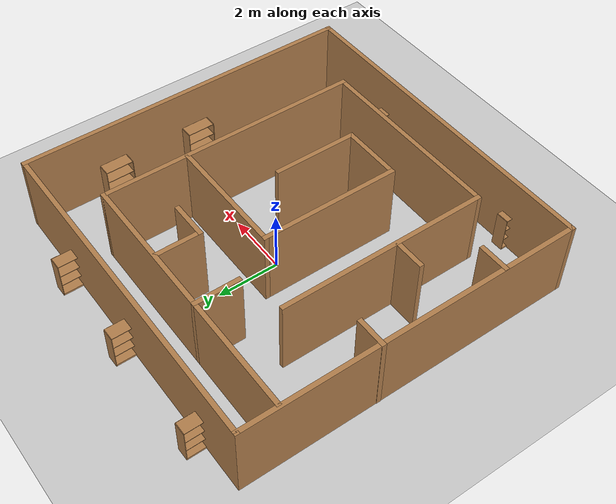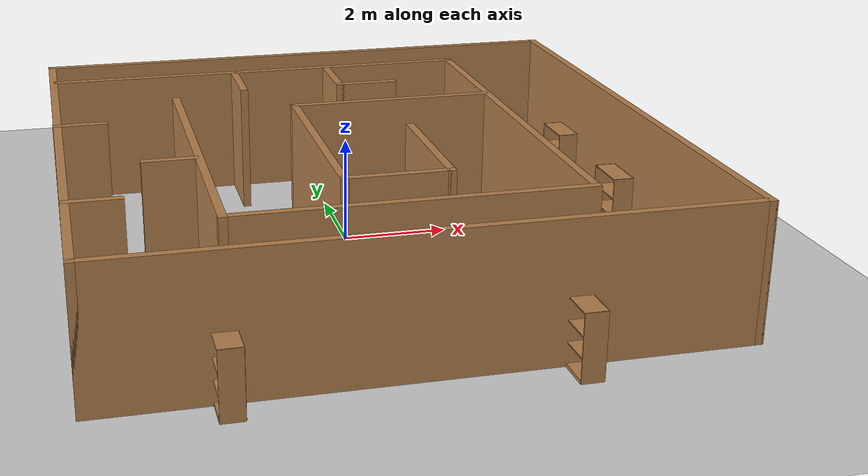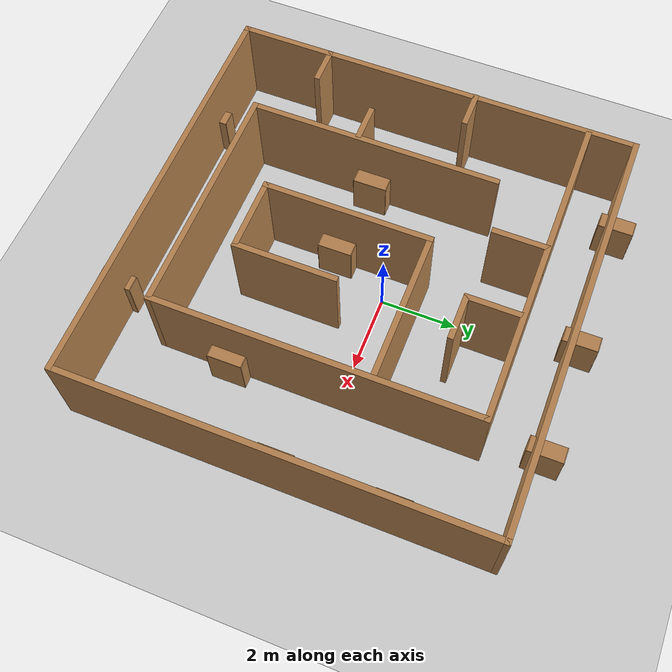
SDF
<sdf version="1.6">
 <world name="default">
  <light name="sun" type="directional">
   <pose>0 0 10 0 -0 0</pose>
   <diffuse>0.8 0.8 0.8 1</diffuse>
   <specular>0.2 0.2 0.2 1</specular>
   <attenuation>
    <range>1000</range>
    <constant>0.9</constant>
    <linear>0.01</linear>
    <quadratic>0.001</quadratic>
   </attenuation>
   <direction>-0.5 0.1 -0.9</direction>
  </light>
  <model name="ground_plane">
   <static>1</static>
   <link name="link">
    <collision name="collision">
     <geometry><plane><normal>0 0 1</normal><size>100 100</size></plane></geometry>
     <surface><friction><ode><mu>100</mu><mu2>50</mu2></ode></friction></surface>
    </collision>
    <visual name="visual">
     <cast_shadows>0</cast_shadows>
     <geometry><plane><normal>0 0 1</normal><size>100 100</size></plane></geometry>
     <material>
      <script><uri>file://media/materials/scripts/gazebo.material</uri><name>Gazebo/Grey</name></script>
     </material>
    </visual>
   </link>
  </model>
  <gravity>0 0 -9.8</gravity>
  <magnetic_field>6e-06 2.3e-05 -4.2e-05</magnetic_field>
  <atmosphere type="adiabatic"/>
  <physics name="default_physics" default="0" type="ode">
   <max_step_size>0.001</max_step_size>
   <real_time_factor>1</real_time_factor>
   <real_time_update_rate>1000</real_time_update_rate>
  </physics>
  <scene><ambient>0.4 0.4 0.4 1</ambient><background>0.7 0.7 0.7 1</background><shadows>1</shadows></scene>
  <spherical_coordinates>
   <surface_model>EARTH_WGS84</surface_model>
   <latitude_deg>0</latitude_deg>
   <longitude_deg>0</longitude_deg>
   <elevation>0</elevation>
   <heading_deg>0</heading_deg>
  </spherical_coordinates>
  <model name="Indoor_10m_1">
   <pose>0.099491 -0.566 0 0 -0 0</pose>
   <link name="Wall_10">
    <collision name="Wall_10_Collision">
     <geometry><box><size>6.25 0.15 2.5</size></box></geometry>
     <pose>0 0 1.25 0 -0 0</pose>
    </collision>
    <visual name="Wall_10_Visual">
     <pose>0 0 1.25 0 -0 0</pose>
     <geometry><box><size>6.25 0.15 2.5</size></box></geometry>
     <material>
      <script><uri>file://media/materials/scripts/gazebo.material</uri><name>Gazebo/Wood</name></script>
      <ambient>1 1 1 1</ambient>
     </material>
     <meta><layer>0</layer></meta>
    </visual>
    <pose>-0.04 -4.155 0 0 -0 3.14159</pose>
   </link>
   <link name="Wall_11">
    <collision name="Wall_11_Collision">
     <geometry><box><size>6.75 0.15 2.5</size></box></geometry>
     <pose>0 0 1.25 0 -0 0</pose>
    </collision>
    <visual name="Wall_11_Visual">
     <pose>0 0 1.25 0 -0 0</pose>
     <geometry><box><size>6.75 0.15 2.5</size></box></geometry>
     <material>
      <script><uri>file://media/materials/scripts/gazebo.material</uri><name>Gazebo/Wood</name></script>
      <ambient>1 1 1 1</ambient>
     </material>
     <meta><layer>0</layer></meta>
    </visual>
    <pose>-3.09 -0.855 0 0 -0 1.5708</pose>
   </link>
   <link name="Wall_13">
    <collision name="Wall_13_Collision">
     <geometry><box><size>4 0.15 2.5</size></box></geometry>
     <pose>0 0 1.25 0 -0 0</pose>
    </collision>
    <visual name="Wall_13_Visual">
     <pose>0 0 1.25 0 -0 0</pose>
     <geometry><box><size>4 0.15 2.5</size></box></geometry>
     <material>
      <script><uri>file://media/materials/scripts/gazebo.material</uri><name>Gazebo/Wood</name></script>
      <ambient>1 1 1 1</ambient>
     </material>
     <meta><layer>0</layer></meta>
    </visual>
    <pose>1.025 1.475 0 0 -0 3.14159</pose>
   </link>
   <link name="Wall_14">
    <collision name="Wall_14_Collision">
     <geometry><box><size>4.5 0.15 2.5</size></box></geometry>
     <pose>0 0 1.25 0 -0 0</pose>
    </collision>
    <visual name="Wall_14_Visual">
     <pose>0 0 1.25 0 -0 0</pose>
     <geometry><box><size>4.5 0.15 2.5</size></box></geometry>
     <material>
      <script><uri>file://media/materials/scripts/gazebo.material</uri><name>Gazebo/Wood</name></script>
      <ambient>1 1 1 1</ambient>
     </material>
     <meta><layer>0</layer></meta>
    </visual>
    <pose>-0.9 -0.7 0 0 -0 -1.5708</pose>
   </link>
   <link name="Wall_15">
    <collision name="Wall_15_Collision">
     <geometry><box><size>2 0.15 2.5</size></box></geometry>
     <pose>0 0 1.25 0 -0 0</pose>
    </collision>
    <visual name="Wall_15_Visual">
     <pose>0 0 1.25 0 -0 0</pose>
     <geometry><box><size>2 0.15 2.5</size></box></geometry>
     <material>
      <script><uri>file://media/materials/scripts/gazebo.material</uri><name>Gazebo/Wood</name></script>
      <ambient>1 1 1 1</ambient>
     </material>
     <meta><layer>0</layer></meta>
    </visual>
    <pose>0.025 -2.875 0 0 -0 0</pose>
   </link>
   <link name="Wall_16">
    <collision name="Wall_16_Collision">
     <geometry><box><size>2.75 0.15 2.5</size></box></geometry>
     <pose>0 0 1.25 0 -0 0</pose>
    </collision>
    <visual name="Wall_16_Visual">
     <pose>0 0 1.25 0 -0 0</pose>
     <geometry><box><size>2.75 0.15 2.5</size></box></geometry>
     <material>
      <script><uri>file://media/materials/scripts/gazebo.material</uri><name>Gazebo/Wood</name></script>
      <ambient>1 1 1 1</ambient>
     </material>
     <meta><layer>0</layer></meta>
    </visual>
    <pose>0.949999 -1.575 0 0 -0 1.5708</pose>
   </link>
   <link name="Wall_18">
    <collision name="Wall_18_Collision">
     <geometry><box><size>1.5 0.15 2.5</size></box></geometry>
     <pose>0 0 1.25 0 -0 0</pose>
    </collision>
    <visual name="Wall_18_Visual">
     <pose>0 0 1.25 0 -0 0</pose>
     <geometry><box><size>1.5 0.15 2.5</size></box></geometry>
     <material>
      <script><uri>file://media/materials/scripts/gazebo.material</uri><name>Gazebo/Wood</name></script>
      <ambient>1 1 1 1</ambient>
     </material>
     <meta><layer>0</layer></meta>
    </visual>
    <pose>0.28 3.46 0 0 -0 -1.5708</pose>
   </link>
   <link name="Wall_19">
    <collision name="Wall_19_Collision">
     <geometry><box><size>1.25 0.15 2.5</size></box></geometry>
     <pose>0 0 1.25 0 -0 0</pose>
    </collision>
    <visual name="Wall_19_Visual">
     <pose>0 0 1.25 0 -0 0</pose>
     <geometry><box><size>1.25 0.15 2.5</size></box></geometry>
     <material>
      <script><uri>file://media/materials/scripts/gazebo.material</uri><name>Gazebo/Wood</name></script>
      <ambient>1 1 1 1</ambient>
     </material>
     <meta><layer>0</layer></meta>
    </visual>
    <pose>0.829999 2.785 0 0 -0 0</pose>
   </link>
   <link name="Wall_2">
    <collision name="Wall_2_Collision">
     <geometry><box><size>11 0.15 2.5</size></box></geometry>
     <pose>0 0 1.25 0 -0 0</pose>
    </collision>
    <visual name="Wall_2_Visual">
     <pose>0 0 1.25 0 -0 0</pose>
     <geometry><box><size>11 0.15 2.5</size></box></geometry>
     <material>
      <script><uri>file://media/materials/scripts/gazebo.material</uri><name>Gazebo/Wood</name></script>
      <ambient>1 1 1 1</ambient>
     </material>
     <meta><layer>0</layer></meta>
    </visual>
    <pose>-5.42 -0 0 0 -0 1.5708</pose>
   </link>
   <link name="Wall_21">
    <collision name="Wall_21_Collision">
     <geometry><box><size>1 0.15 2.5</size></box></geometry>
     <pose>0 0 1.25 0 -0 0</pose>
    </collision>
    <visual name="Wall_21_Visual">
     <pose>0 0 1.25 0 -0 0</pose>
     <geometry><box><size>1 0.15 2.5</size></box></geometry>
     <material>
      <script><uri>file://media/materials/scripts/gazebo.material</uri><name>Gazebo/Wood</name></script>
      <ambient>1 1 1 1</ambient>
     </material>
     <meta><layer>0</layer></meta>
    </visual>
    <pose>-4.985 -2.995 0 0 -0 0</pose>
   </link>
   <link name="Wall_23">
    <collision name="Wall_23_Collision">
     <geometry><box><size>1 0.15 2.5</size></box></geometry>
     <pose>0 0 1.25 0 -0 0</pose>
    </collision>
    <visual name="Wall_23_Visual">
     <pose>0 0 1.25 0 -0 0</pose>
     <geometry><box><size>1 0.15 2.5</size></box></geometry>
     <material>
      <script><uri>file://media/materials/scripts/gazebo.material</uri><name>Gazebo/Wood</name></script>
      <ambient>1 1 1 1</ambient>
     </material>
     <meta><layer>0</layer></meta>
    </visual>
    <pose>-3.595 -1.275 0 0 -0 3.14159</pose>
   </link>
   <link name="Wall_25">
    <collision name="Wall_25_Collision">
     <geometry><box><size>1 0.15 2.5</size></box></geometry>
     <pose>0 0 1.25 0 -0 0</pose>
    </collision>
    <visual name="Wall_25_Visual">
     <pose>0 0 1.25 0 -0 0</pose>
     <geometry><box><size>1 0.15 2.5</size></box></geometry>
     <material>
      <script><uri>file://media/materials/scripts/gazebo.material</uri><name>Gazebo/Wood</name></script>
      <ambient>1 1 1 1</ambient>
     </material>
     <meta><layer>0</layer></meta>
    </visual>
    <pose>-5.005 1.125 0 0 -0 0</pose>
   </link>
   <link name="Wall_27">
    <collision name="Wall_27_Collision">
     <geometry><box><size>1.5 0.15 2.5</size></box></geometry>
     <pose>0 0 1.25 0 -0 0</pose>
    </collision>
    <visual name="Wall_27_Visual">
     <pose>0 0 1.25 0 -0 0</pose>
     <geometry><box><size>1.5 0.15 2.5</size></box></geometry>
     <material>
      <script><uri>file://media/materials/scripts/gazebo.material</uri><name>Gazebo/Wood</name></script>
      <ambient>1 1 1 1</ambient>
     </material>
     <meta><layer>0</layer></meta>
    </visual>
    <pose>-1.69 3.52 0 0 -0 -1.5708</pose>
   </link>
   <link name="Wall_4">
    <collision name="Wall_4_Collision">
     <geometry><box><size>11 0.15 2.5</size></box></geometry>
     <pose>0 0 1.25 0 -0 0</pose>
    </collision>
    <visual name="Wall_4_Visual">
     <pose>0 0 1.25 0 -0 0</pose>
     <geometry><box><size>11 0.15 2.5</size></box></geometry>
     <material>
      <script><uri>file://media/materials/scripts/gazebo.material</uri><name>Gazebo/Wood</name></script>
      <ambient>1 1 1 1</ambient>
     </material>
     <meta><layer>0</layer></meta>
    </visual>
    <pose>0.005 -5.425 0 0 -0 0</pose>
   </link>
   <link name="Wall_5">
    <collision name="Wall_5_Collision">
     <geometry><box><size>11 0.15 2.5</size></box></geometry>
     <pose>0 0 1.25 0 -0 0</pose>
    </collision>
    <visual name="Wall_5_Visual">
     <pose>0 0 1.25 0 -0 0</pose>
     <geometry><box><size>11 0.15 2.5</size></box></geometry>
     <material>
      <script><uri>file://media/materials/scripts/gazebo.material</uri><name>Gazebo/Wood</name></script>
      <ambient>1 1 1 1</ambient>
     </material>
     <meta><layer>0</layer></meta>
    </visual>
    <pose>5.43 -0 0 0 -0 1.5708</pose>
   </link>
   <link name="Wall_6">
    <collision name="Wall_6_Collision">
     <geometry><box><size>11 0.15 2.5</size></box></geometry>
     <pose>0 0 1.25 0 -0 0</pose>
    </collision>
    <visual name="Wall_6_Visual">
     <pose>0 0 1.25 0 -0 0</pose>
     <geometry><box><size>11 0.15 2.5</size></box></geometry>
     <material>
      <script><uri>file://media/materials/scripts/gazebo.material</uri><name>Gazebo/Wood</name></script>
      <ambient>1 1 1 1</ambient>
     </material>
     <meta><layer>0</layer></meta>
    </visual>
    <pose>0.005 5.425 0 0 -0 3.14159</pose>
   </link>
   <link name="Wall_8">
    <collision name="Wall_8_Collision">
     <geometry><box><size>8.5 0.15 2.5</size></box></geometry>
     <pose>0 0 1.25 0 -0 0</pose>
    </collision>
    <visual name="Wall_8_Visual">
     <pose>0 0 1.25 0 -0 0</pose>
     <geometry><box><size>8.5 0.15 2.5</size></box></geometry>
     <material>
      <script><uri>file://media/materials/scripts/gazebo.material</uri><name>Gazebo/Wood</name></script>
      <ambient>1 1 1 1</ambient>
     </material>
     <meta><layer>0</layer></meta>
    </visual>
    <pose>-1.165 4.195 0 0 -0 0</pose>
   </link>
   <link name="Wall_9">
    <collision name="Wall_9_Collision">
     <geometry><box><size>8.5 0.15 2.5</size></box></geometry>
     <pose>0 0 1.25 0 -0 0</pose>
    </collision>
    <visual name="Wall_9_Visual">
     <pose>0 0 1.25 0 -0 0</pose>
     <geometry><box><size>8.5 0.15 2.5</size></box></geometry>
     <material>
      <script><uri>file://media/materials/scripts/gazebo.material</uri><name>Gazebo/Wood</name></script>
      <ambient>1 1 1 1</ambient>
     </material>
     <meta><layer>0</layer></meta>
    </visual>
    <pose>3.01 0.02 0 0 -0 -1.5708</pose>
   </link>
   <static>1</static>
  </model>
  <model name="bookshelf">
   <static>1</static>
   <link name="link">
    <inertial><mass>1</mass></inertial>
    <collision name="back">
     <pose>0 0.005 0.6 0 -0 0</pose>
     <geometry><box><size>0.9 0.01 1.2</size></box></geometry>
    </collision>
    <visual name="visual1">
     <pose>0 0.005 0.6 0 -0 0</pose>
     <geometry><box><size>0.9 0.01 1.2</size></box></geometry>
     <material>
      <script><uri>file://media/materials/scripts/gazebo.material</uri><name>Gazebo/Wood</name></script>
     </material>
    </visual>
    <collision name="left_side">
     <pose>0.45 -0.195 0.6 0 -0 0</pose>
     <geometry><box><size>0.02 0.4 1.2</size></box></geometry>
    </collision>
    <visual name="visual2">
     <pose>0.45 -0.195 0.6 0 -0 0</pose>
     <geometry><box><size>0.02 0.4 1.2</size></box></geometry>
     <material>
      <script><uri>file://media/materials/scripts/gazebo.material</uri><name>Gazebo/Wood</name></script>
     </material>
    </visual>
    <collision name="right_side">
     <pose>-0.45 -0.195 0.6 0 -0 0</pose>
     <geometry><box><size>0.02 0.4 1.2</size></box></geometry>
    </collision>
    <visual name="visual3">
     <pose>-0.45 -0.195 0.6 0 -0 0</pose>
     <geometry><box><size>0.02 0.4 1.2</size></box></geometry>
     <material>
      <script><uri>file://media/materials/scripts/gazebo.material</uri><name>Gazebo/Wood</name></script>
     </material>
    </visual>
    <collision name="bottom">
     <pose>0 -0.195 0.03 0 -0 0</pose>
     <geometry><box><size>0.88 0.4 0.06</size></box></geometry>
    </collision>
    <visual name="visual4">
     <pose>0 -0.195 0.03 0 -0 0</pose>
     <geometry><box><size>0.88 0.4 0.06</size></box></geometry>
     <material>
      <script><uri>file://media/materials/scripts/gazebo.material</uri><name>Gazebo/Wood</name></script>
     </material>
    </visual>
    <collision name="top">
     <pose>0 -0.195 1.19 0 -0 0</pose>
     <geometry><box><size>0.88 0.4 0.02</size></box></geometry>
    </collision>
    <visual name="visual5">
     <pose>0 -0.195 1.19 0 -0 0</pose>
     <geometry><box><size>0.88 0.4 0.02</size></box></geometry>
     <material>
      <script><uri>file://media/materials/scripts/gazebo.material</uri><name>Gazebo/Wood</name></script>
     </material>
    </visual>
    <collision name="low_shelf">
     <pose>0 -0.195 0.43 0 -0 0</pose>
     <geometry><box><size>0.88 0.4 0.02</size></box></geometry>
    </collision>
    <visual name="visual6">
     <pose>0 -0.195 0.43 0 -0 0</pose>
     <geometry><box><size>0.88 0.4 0.02</size></box></geometry>
     <material>
      <script><uri>file://media/materials/scripts/gazebo.material</uri><name>Gazebo/Wood</name></script>
     </material>
    </visual>
    <collision name="high_shelf">
     <pose>0 -0.195 0.8 0 -0 0</pose>
     <geometry><box><size>0.88 0.4 0.02</size></box></geometry>
    </collision>
    <visual name="visual7">
     <pose>0 -0.195 0.8 0 -0 0</pose>
     <geometry><box><size>0.88 0.4 0.02</size></box></geometry>
     <material>
      <script><uri>file://media/materials/scripts/gazebo.material</uri><name>Gazebo/Wood</name></script>
     </material>
    </visual>
   </link>
   <pose>5.44203 2.20417 0 0 0 -1.5635</pose>
  </model>
  <model name="bookshelf_clone">
   <static>1</static>
   <link name="link">
    <inertial><mass>1</mass></inertial>
    <collision name="back">
     <pose>0 0.005 0.6 0 -0 0</pose>
     <geometry><box><size>0.9 0.01 1.2</size></box></geometry>
    </collision>
    <visual name="visual1">
     <pose>0 0.005 0.6 0 -0 0</pose>
     <geometry><box><size>0.9 0.01 1.2</size></box></geometry>
     <material>
      <script><uri>file://media/materials/scripts/gazebo.material</uri><name>Gazebo/Wood</name></script>
     </material>
    </visual>
    <collision name="left_side">
     <pose>0.45 -0.195 0.6 0 -0 0</pose>
     <geometry><box><size>0.02 0.4 1.2</size></box></geometry>
    </collision>
    <visual name="visual2">
     <pose>0.45 -0.195 0.6 0 -0 0</pose>
     <geometry><box><size>0.02 0.4 1.2</size></box></geometry>
     <material>
      <script><uri>file://media/materials/scripts/gazebo.material</uri><name>Gazebo/Wood</name></script>
     </material>
    </visual>
    <collision name="right_side">
     <pose>-0.45 -0.195 0.6 0 -0 0</pose>
     <geometry><box><size>0.02 0.4 1.2</size></box></geometry>
    </collision>
    <visual name="visual3">
     <pose>-0.45 -0.195 0.6 0 -0 0</pose>
     <geometry><box><size>0.02 0.4 1.2</size></box></geometry>
     <material>
      <script><uri>file://media/materials/scripts/gazebo.material</uri><name>Gazebo/Wood</name></script>
     </material>
    </visual>
    <collision name="bottom">
     <pose>0 -0.195 0.03 0 -0 0</pose>
     <geometry><box><size>0.88 0.4 0.06</size></box></geometry>
    </collision>
    <visual name="visual4">
     <pose>0 -0.195 0.03 0 -0 0</pose>
     <geometry><box><size>0.88 0.4 0.06</size></box></geometry>
     <material>
      <script><uri>file://media/materials/scripts/gazebo.material</uri><name>Gazebo/Wood</name></script>
     </material>
    </visual>
    <collision name="top">
     <pose>0 -0.195 1.19 0 -0 0</pose>
     <geometry><box><size>0.88 0.4 0.02</size></box></geometry>
    </collision>
    <visual name="visual5">
     <pose>0 -0.195 1.19 0 -0 0</pose>
     <geometry><box><size>0.88 0.4 0.02</size></box></geometry>
     <material>
      <script><uri>file://media/materials/scripts/gazebo.material</uri><name>Gazebo/Wood</name></script>
     </material>
    </visual>
    <collision name="low_shelf">
     <pose>0 -0.195 0.43 0 -0 0</pose>
     <geometry><box><size>0.88 0.4 0.02</size></box></geometry>
    </collision>
    <visual name="visual6">
     <pose>0 -0.195 0.43 0 -0 0</pose>
     <geometry><box><size>0.88 0.4 0.02</size></box></geometry>
     <material>
      <script><uri>file://media/materials/scripts/gazebo.material</uri><name>Gazebo/Wood</name></script>
     </material>
    </visual>
    <collision name="high_shelf">
     <pose>0 -0.195 0.8 0 -0 0</pose>
     <geometry><box><size>0.88 0.4 0.02</size></box></geometry>
    </collision>
    <visual name="visual7">
     <pose>0 -0.195 0.8 0 -0 0</pose>
     <geometry><box><size>0.88 0.4 0.02</size></box></geometry>
     <material>
      <script><uri>file://media/materials/scripts/gazebo.material</uri><name>Gazebo/Wood</name></script>
     </material>
    </visual>
   </link>
   <pose>-0.366445 -1.45647 0 0 0 -1.5635</pose>
  </model>
  <model name="bookshelf_clone_0">
   <static>1</static>
   <link name="link">
    <inertial><mass>1</mass></inertial>
    <collision name="back">
     <pose>0 0.005 0.6 0 -0 0</pose>
     <geometry><box><size>0.9 0.01 1.2</size></box></geometry>
    </collision>
    <visual name="visual1">
     <pose>0 0.005 0.6 0 -0 0</pose>
     <geometry><box><size>0.9 0.01 1.2</size></box></geometry>
     <material>
      <script><uri>file://media/materials/scripts/gazebo.material</uri><name>Gazebo/Wood</name></script>
     </material>
    </visual>
    <collision name="left_side">
     <pose>0.45 -0.195 0.6 0 -0 0</pose>
     <geometry><box><size>0.02 0.4 1.2</size></box></geometry>
    </collision>
    <visual name="visual2">
     <pose>0.45 -0.195 0.6 0 -0 0</pose>
     <geometry><box><size>0.02 0.4 1.2</size></box></geometry>
     <material>
      <script><uri>file://media/materials/scripts/gazebo.material</uri><name>Gazebo/Wood</name></script>
     </material>
    </visual>
    <collision name="right_side">
     <pose>-0.45 -0.195 0.6 0 -0 0</pose>
     <geometry><box><size>0.02 0.4 1.2</size></box></geometry>
    </collision>
    <visual name="visual3">
     <pose>-0.45 -0.195 0.6 0 -0 0</pose>
     <geometry><box><size>0.02 0.4 1.2</size></box></geometry>
     <material>
      <script><uri>file://media/materials/scripts/gazebo.material</uri><name>Gazebo/Wood</name></script>
     </material>
    </visual>
    <collision name="bottom">
     <pose>0 -0.195 0.03 0 -0 0</pose>
     <geometry><box><size>0.88 0.4 0.06</size></box></geometry>
    </collision>
    <visual name="visual4">
     <pose>0 -0.195 0.03 0 -0 0</pose>
     <geometry><box><size>0.88 0.4 0.06</size></box></geometry>
     <material>
      <script><uri>file://media/materials/scripts/gazebo.material</uri><name>Gazebo/Wood</name></script>
     </material>
    </visual>
    <collision name="top">
     <pose>0 -0.195 1.19 0 -0 0</pose>
     <geometry><box><size>0.88 0.4 0.02</size></box></geometry>
    </collision>
    <visual name="visual5">
     <pose>0 -0.195 1.19 0 -0 0</pose>
     <geometry><box><size>0.88 0.4 0.02</size></box></geometry>
     <material>
      <script><uri>file://media/materials/scripts/gazebo.material</uri><name>Gazebo/Wood</name></script>
     </material>
    </visual>
    <collision name="low_shelf">
     <pose>0 -0.195 0.43 0 -0 0</pose>
     <geometry><box><size>0.88 0.4 0.02</size></box></geometry>
    </collision>
    <visual name="visual6">
     <pose>0 -0.195 0.43 0 -0 0</pose>
     <geometry><box><size>0.88 0.4 0.02</size></box></geometry>
     <material>
      <script><uri>file://media/materials/scripts/gazebo.material</uri><name>Gazebo/Wood</name></script>
     </material>
    </visual>
    <collision name="high_shelf">
     <pose>0 -0.195 0.8 0 -0 0</pose>
     <geometry><box><size>0.88 0.4 0.02</size></box></geometry>
    </collision>
    <visual name="visual7">
     <pose>0 -0.195 0.8 0 -0 0</pose>
     <geometry><box><size>0.88 0.4 0.02</size></box></geometry>
     <material>
      <script><uri>file://media/materials/scripts/gazebo.material</uri><name>Gazebo/Wood</name></script>
     </material>
    </visual>
   </link>
   <pose>-2.53982 -1.33603 0 0 0 -1.5635</pose>
  </model>
  <model name="bookshelf_clone_1">
   <static>1</static>
   <link name="link">
    <inertial><mass>1</mass></inertial>
    <collision name="back">
     <pose>0 0.005 0.6 0 -0 0</pose>
     <geometry><box><size>0.9 0.01 1.2</size></box></geometry>
    </collision>
    <visual name="visual1">
     <pose>0 0.005 0.6 0 -0 0</pose>
     <geometry><box><size>0.9 0.01 1.2</size></box></geometry>
     <material>
      <script><uri>file://media/materials/scripts/gazebo.material</uri><name>Gazebo/Wood</name></script>
     </material>
    </visual>
    <collision name="left_side">
     <pose>0.45 -0.195 0.6 0 -0 0</pose>
     <geometry><box><size>0.02 0.4 1.2</size></box></geometry>
    </collision>
    <visual name="visual2">
     <pose>0.45 -0.195 0.6 0 -0 0</pose>
     <geometry><box><size>0.02 0.4 1.2</size></box></geometry>
     <material>
      <script><uri>file://media/materials/scripts/gazebo.material</uri><name>Gazebo/Wood</name></script>
     </material>
    </visual>
    <collision name="right_side">
     <pose>-0.45 -0.195 0.6 0 -0 0</pose>
     <geometry><box><size>0.02 0.4 1.2</size></box></geometry>
    </collision>
    <visual name="visual3">
     <pose>-0.45 -0.195 0.6 0 -0 0</pose>
     <geometry><box><size>0.02 0.4 1.2</size></box></geometry>
     <material>
      <script><uri>file://media/materials/scripts/gazebo.material</uri><name>Gazebo/Wood</name></script>
     </material>
    </visual>
    <collision name="bottom">
     <pose>0 -0.195 0.03 0 -0 0</pose>
     <geometry><box><size>0.88 0.4 0.06</size></box></geometry>
    </collision>
    <visual name="visual4">
     <pose>0 -0.195 0.03 0 -0 0</pose>
     <geometry><box><size>0.88 0.4 0.06</size></box></geometry>
     <material>
      <script><uri>file://media/materials/scripts/gazebo.material</uri><name>Gazebo/Wood</name></script>
     </material>
    </visual>
    <collision name="top">
     <pose>0 -0.195 1.19 0 -0 0</pose>
     <geometry><box><size>0.88 0.4 0.02</size></box></geometry>
    </collision>
    <visual name="visual5">
     <pose>0 -0.195 1.19 0 -0 0</pose>
     <geometry><box><size>0.88 0.4 0.02</size></box></geometry>
     <material>
      <script><uri>file://media/materials/scripts/gazebo.material</uri><name>Gazebo/Wood</name></script>
     </material>
    </visual>
    <collision name="low_shelf">
     <pose>0 -0.195 0.43 0 -0 0</pose>
     <geometry><box><size>0.88 0.4 0.02</size></box></geometry>
    </collision>
    <visual name="visual6">
     <pose>0 -0.195 0.43 0 -0 0</pose>
     <geometry><box><size>0.88 0.4 0.02</size></box></geometry>
     <material>
      <script><uri>file://media/materials/scripts/gazebo.material</uri><name>Gazebo/Wood</name></script>
     </material>
    </visual>
    <collision name="high_shelf">
     <pose>0 -0.195 0.8 0 -0 0</pose>
     <geometry><box><size>0.88 0.4 0.02</size></box></geometry>
    </collision>
    <visual name="visual7">
     <pose>0 -0.195 0.8 0 -0 0</pose>
     <geometry><box><size>0.88 0.4 0.02</size></box></geometry>
     <material>
      <script><uri>file://media/materials/scripts/gazebo.material</uri><name>Gazebo/Wood</name></script>
     </material>
    </visual>
   </link>
   <pose>-2.9831 -6.16862 0 0 0 -1.5635</pose>
  </model>
  <model name="bookshelf_clone_2">
   <static>1</static>
   <link name="link">
    <inertial><mass>1</mass></inertial>
    <collision name="back">
     <pose>0 0.005 0.6 0 -0 0</pose>
     <geometry><box><size>0.9 0.01 1.2</size></box></geometry>
    </collision>
    <visual name="visual1">
     <pose>0 0.005 0.6 0 -0 0</pose>
     <geometry><box><size>0.9 0.01 1.2</size></box></geometry>
     <material>
      <script><uri>file://media/materials/scripts/gazebo.material</uri><name>Gazebo/Wood</name></script>
     </material>
    </visual>
    <collision name="left_side">
     <pose>0.45 -0.195 0.6 0 -0 0</pose>
     <geometry><box><size>0.02 0.4 1.2</size></box></geometry>
    </collision>
    <visual name="visual2">
     <pose>0.45 -0.195 0.6 0 -0 0</pose>
     <geometry><box><size>0.02 0.4 1.2</size></box></geometry>
     <material>
      <script><uri>file://media/materials/scripts/gazebo.material</uri><name>Gazebo/Wood</name></script>
     </material>
    </visual>
    <collision name="right_side">
     <pose>-0.45 -0.195 0.6 0 -0 0</pose>
     <geometry><box><size>0.02 0.4 1.2</size></box></geometry>
    </collision>
    <visual name="visual3">
     <pose>-0.45 -0.195 0.6 0 -0 0</pose>
     <geometry><box><size>0.02 0.4 1.2</size></box></geometry>
     <material>
      <script><uri>file://media/materials/scripts/gazebo.material</uri><name>Gazebo/Wood</name></script>
     </material>
    </visual>
    <collision name="bottom">
     <pose>0 -0.195 0.03 0 -0 0</pose>
     <geometry><box><size>0.88 0.4 0.06</size></box></geometry>
    </collision>
    <visual name="visual4">
     <pose>0 -0.195 0.03 0 -0 0</pose>
     <geometry><box><size>0.88 0.4 0.06</size></box></geometry>
     <material>
      <script><uri>file://media/materials/scripts/gazebo.material</uri><name>Gazebo/Wood</name></script>
     </material>
    </visual>
    <collision name="top">
     <pose>0 -0.195 1.19 0 -0 0</pose>
     <geometry><box><size>0.88 0.4 0.02</size></box></geometry>
    </collision>
    <visual name="visual5">
     <pose>0 -0.195 1.19 0 -0 0</pose>
     <geometry><box><size>0.88 0.4 0.02</size></box></geometry>
     <material>
      <script><uri>file://media/materials/scripts/gazebo.material</uri><name>Gazebo/Wood</name></script>
     </material>
    </visual>
    <collision name="low_shelf">
     <pose>0 -0.195 0.43 0 -0 0</pose>
     <geometry><box><size>0.88 0.4 0.02</size></box></geometry>
    </collision>
    <visual name="visual6">
     <pose>0 -0.195 0.43 0 -0 0</pose>
     <geometry><box><size>0.88 0.4 0.02</size></box></geometry>
     <material>
      <script><uri>file://media/materials/scripts/gazebo.material</uri><name>Gazebo/Wood</name></script>
     </material>
    </visual>
    <collision name="high_shelf">
     <pose>0 -0.195 0.8 0 -0 0</pose>
     <geometry><box><size>0.88 0.4 0.02</size></box></geometry>
    </collision>
    <visual name="visual7">
     <pose>0 -0.195 0.8 0 -0 0</pose>
     <geometry><box><size>0.88 0.4 0.02</size></box></geometry>
     <material>
      <script><uri>file://media/materials/scripts/gazebo.material</uri><name>Gazebo/Wood</name></script>
     </material>
    </visual>
   </link>
   <pose>2.57955 -6.22478 0 0 0 -1.5635</pose>
  </model>
  <model name="bookshelf_clone_3">
   <static>1</static>
   <link name="link">
    <inertial><mass>1</mass></inertial>
    <collision name="back">
     <pose>0 0.005 0.6 0 -0 0</pose>
     <geometry><box><size>0.9 0.01 1.2</size></box></geometry>
    </collision>
    <visual name="visual1">
     <pose>0 0.005 0.6 0 -0 0</pose>
     <geometry><box><size>0.9 0.01 1.2</size></box></geometry>
     <material>
      <script><uri>file://media/materials/scripts/gazebo.material</uri><name>Gazebo/Wood</name></script>
     </material>
    </visual>
    <collision name="left_side">
     <pose>0.45 -0.195 0.6 0 -0 0</pose>
     <geometry><box><size>0.02 0.4 1.2</size></box></geometry>
    </collision>
    <visual name="visual2">
     <pose>0.45 -0.195 0.6 0 -0 0</pose>
     <geometry><box><size>0.02 0.4 1.2</size></box></geometry>
     <material>
      <script><uri>file://media/materials/scripts/gazebo.material</uri><name>Gazebo/Wood</name></script>
     </material>
    </visual>
    <collision name="right_side">
     <pose>-0.45 -0.195 0.6 0 -0 0</pose>
     <geometry><box><size>0.02 0.4 1.2</size></box></geometry>
    </collision>
    <visual name="visual3">
     <pose>-0.45 -0.195 0.6 0 -0 0</pose>
     <geometry><box><size>0.02 0.4 1.2</size></box></geometry>
     <material>
      <script><uri>file://media/materials/scripts/gazebo.material</uri><name>Gazebo/Wood</name></script>
     </material>
    </visual>
    <collision name="bottom">
     <pose>0 -0.195 0.03 0 -0 0</pose>
     <geometry><box><size>0.88 0.4 0.06</size></box></geometry>
    </collision>
    <visual name="visual4">
     <pose>0 -0.195 0.03 0 -0 0</pose>
     <geometry><box><size>0.88 0.4 0.06</size></box></geometry>
     <material>
      <script><uri>file://media/materials/scripts/gazebo.material</uri><name>Gazebo/Wood</name></script>
     </material>
    </visual>
    <collision name="top">
     <pose>0 -0.195 1.19 0 -0 0</pose>
     <geometry><box><size>0.88 0.4 0.02</size></box></geometry>
    </collision>
    <visual name="visual5">
     <pose>0 -0.195 1.19 0 -0 0</pose>
     <geometry><box><size>0.88 0.4 0.02</size></box></geometry>
     <material>
      <script><uri>file://media/materials/scripts/gazebo.material</uri><name>Gazebo/Wood</name></script>
     </material>
    </visual>
    <collision name="low_shelf">
     <pose>0 -0.195 0.43 0 -0 0</pose>
     <geometry><box><size>0.88 0.4 0.02</size></box></geometry>
    </collision>
    <visual name="visual6">
     <pose>0 -0.195 0.43 0 -0 0</pose>
     <geometry><box><size>0.88 0.4 0.02</size></box></geometry>
     <material>
      <script><uri>file://media/materials/scripts/gazebo.material</uri><name>Gazebo/Wood</name></script>
     </material>
    </visual>
    <collision name="high_shelf">
     <pose>0 -0.195 0.8 0 -0 0</pose>
     <geometry><box><size>0.88 0.4 0.02</size></box></geometry>
    </collision>
    <visual name="visual7">
     <pose>0 -0.195 0.8 0 -0 0</pose>
     <geometry><box><size>0.88 0.4 0.02</size></box></geometry>
     <material>
      <script><uri>file://media/materials/scripts/gazebo.material</uri><name>Gazebo/Wood</name></script>
     </material>
    </visual>
   </link>
   <pose>3.48418 -2.76292 0 0 0 -1.5635</pose>
  </model>
  <model name="bookshelf_clone_4">
   <static>1</static>
   <link name="link">
    <inertial><mass>1</mass></inertial>
    <collision name="back">
     <pose>0 0.005 0.6 0 -0 0</pose>
     <geometry><box><size>0.9 0.01 1.2</size></box></geometry>
    </collision>
    <visual name="visual1">
     <pose>0 0.005 0.6 0 -0 0</pose>
     <geometry><box><size>0.9 0.01 1.2</size></box></geometry>
     <material>
      <script><uri>file://media/materials/scripts/gazebo.material</uri><name>Gazebo/Wood</name></script>
     </material>
    </visual>
    <collision name="left_side">
     <pose>0.45 -0.195 0.6 0 -0 0</pose>
     <geometry><box><size>0.02 0.4 1.2</size></box></geometry>
    </collision>
    <visual name="visual2">
     <pose>0.45 -0.195 0.6 0 -0 0</pose>
     <geometry><box><size>0.02 0.4 1.2</size></box></geometry>
     <material>
      <script><uri>file://media/materials/scripts/gazebo.material</uri><name>Gazebo/Wood</name></script>
     </material>
    </visual>
    <collision name="right_side">
     <pose>-0.45 -0.195 0.6 0 -0 0</pose>
     <geometry><box><size>0.02 0.4 1.2</size></box></geometry>
    </collision>
    <visual name="visual3">
     <pose>-0.45 -0.195 0.6 0 -0 0</pose>
     <geometry><box><size>0.02 0.4 1.2</size></box></geometry>
     <material>
      <script><uri>file://media/materials/scripts/gazebo.material</uri><name>Gazebo/Wood</name></script>
     </material>
    </visual>
    <collision name="bottom">
     <pose>0 -0.195 0.03 0 -0 0</pose>
     <geometry><box><size>0.88 0.4 0.06</size></box></geometry>
    </collision>
    <visual name="visual4">
     <pose>0 -0.195 0.03 0 -0 0</pose>
     <geometry><box><size>0.88 0.4 0.06</size></box></geometry>
     <material>
      <script><uri>file://media/materials/scripts/gazebo.material</uri><name>Gazebo/Wood</name></script>
     </material>
    </visual>
    <collision name="top">
     <pose>0 -0.195 1.19 0 -0 0</pose>
     <geometry><box><size>0.88 0.4 0.02</size></box></geometry>
    </collision>
    <visual name="visual5">
     <pose>0 -0.195 1.19 0 -0 0</pose>
     <geometry><box><size>0.88 0.4 0.02</size></box></geometry>
     <material>
      <script><uri>file://media/materials/scripts/gazebo.material</uri><name>Gazebo/Wood</name></script>
     </material>
    </visual>
    <collision name="low_shelf">
     <pose>0 -0.195 0.43 0 -0 0</pose>
     <geometry><box><size>0.88 0.4 0.02</size></box></geometry>
    </collision>
    <visual name="visual6">
     <pose>0 -0.195 0.43 0 -0 0</pose>
     <geometry><box><size>0.88 0.4 0.02</size></box></geometry>
     <material>
      <script><uri>file://media/materials/scripts/gazebo.material</uri><name>Gazebo/Wood</name></script>
     </material>
    </visual>
    <collision name="high_shelf">
     <pose>0 -0.195 0.8 0 -0 0</pose>
     <geometry><box><size>0.88 0.4 0.02</size></box></geometry>
    </collision>
    <visual name="visual7">
     <pose>0 -0.195 0.8 0 -0 0</pose>
     <geometry><box><size>0.88 0.4 0.02</size></box></geometry>
     <material>
      <script><uri>file://media/materials/scripts/gazebo.material</uri><name>Gazebo/Wood</name></script>
     </material>
    </visual>
   </link>
   <pose>5.43706 -0.695466 0 0 0 -1.5635</pose>
  </model>
  <model name="bookshelf_clone_5">
   <static>1</static>
   <link name="link">
    <inertial><mass>1</mass></inertial>
    <collision name="back">
     <pose>0 0.005 0.6 0 -0 0</pose>
     <geometry><box><size>0.9 0.01 1.2</size></box></geometry>
    </collision>
    <visual name="visual1">
     <pose>0 0.005 0.6 0 -0 0</pose>
     <geometry><box><size>0.9 0.01 1.2</size></box></geometry>
     <material>
      <script><uri>file://media/materials/scripts/gazebo.material</uri><name>Gazebo/Wood</name></script>
     </material>
    </visual>
    <collision name="left_side">
     <pose>0.45 -0.195 0.6 0 -0 0</pose>
     <geometry><box><size>0.02 0.4 1.2</size></box></geometry>
    </collision>
    <visual name="visual2">
     <pose>0.45 -0.195 0.6 0 -0 0</pose>
     <geometry><box><size>0.02 0.4 1.2</size></box></geometry>
     <material>
      <script><uri>file://media/materials/scripts/gazebo.material</uri><name>Gazebo/Wood</name></script>
     </material>
    </visual>
    <collision name="right_side">
     <pose>-0.45 -0.195 0.6 0 -0 0</pose>
     <geometry><box><size>0.02 0.4 1.2</size></box></geometry>
    </collision>
    <visual name="visual3">
     <pose>-0.45 -0.195 0.6 0 -0 0</pose>
     <geometry><box><size>0.02 0.4 1.2</size></box></geometry>
     <material>
      <script><uri>file://media/materials/scripts/gazebo.material</uri><name>Gazebo/Wood</name></script>
     </material>
    </visual>
    <collision name="bottom">
     <pose>0 -0.195 0.03 0 -0 0</pose>
     <geometry><box><size>0.88 0.4 0.06</size></box></geometry>
    </collision>
    <visual name="visual4">
     <pose>0 -0.195 0.03 0 -0 0</pose>
     <geometry><box><size>0.88 0.4 0.06</size></box></geometry>
     <material>
      <script><uri>file://media/materials/scripts/gazebo.material</uri><name>Gazebo/Wood</name></script>
     </material>
    </visual>
    <collision name="top">
     <pose>0 -0.195 1.19 0 -0 0</pose>
     <geometry><box><size>0.88 0.4 0.02</size></box></geometry>
    </collision>
    <visual name="visual5">
     <pose>0 -0.195 1.19 0 -0 0</pose>
     <geometry><box><size>0.88 0.4 0.02</size></box></geometry>
     <material>
      <script><uri>file://media/materials/scripts/gazebo.material</uri><name>Gazebo/Wood</name></script>
     </material>
    </visual>
    <collision name="low_shelf">
     <pose>0 -0.195 0.43 0 -0 0</pose>
     <geometry><box><size>0.88 0.4 0.02</size></box></geometry>
    </collision>
    <visual name="visual6">
     <pose>0 -0.195 0.43 0 -0 0</pose>
     <geometry><box><size>0.88 0.4 0.02</size></box></geometry>
     <material>
      <script><uri>file://media/materials/scripts/gazebo.material</uri><name>Gazebo/Wood</name></script>
     </material>
    </visual>
    <collision name="high_shelf">
     <pose>0 -0.195 0.8 0 -0 0</pose>
     <geometry><box><size>0.88 0.4 0.02</size></box></geometry>
    </collision>
    <visual name="visual7">
     <pose>0 -0.195 0.8 0 -0 0</pose>
     <geometry><box><size>0.88 0.4 0.02</size></box></geometry>
     <material>
      <script><uri>file://media/materials/scripts/gazebo.material</uri><name>Gazebo/Wood</name></script>
     </material>
    </visual>
   </link>
   <pose>-3.54515 5.06325 0 0 0 -1.5635</pose>
  </model>
  <model name="bookshelf_clone_6">
   <static>1</static>
   <link name="link">
    <inertial><mass>1</mass></inertial>
    <collision name="back">
     <pose>0 0.005 0.6 0 -0 0</pose>
     <geometry><box><size>0.9 0.01 1.2</size></box></geometry>
    </collision>
    <visual name="visual1">
     <pose>0 0.005 0.6 0 -0 0</pose>
     <geometry><box><size>0.9 0.01 1.2</size></box></geometry>
     <material>
      <script><uri>file://media/materials/scripts/gazebo.material</uri><name>Gazebo/Wood</name></script>
     </material>
    </visual>
    <collision name="left_side">
     <pose>0.45 -0.195 0.6 0 -0 0</pose>
     <geometry><box><size>0.02 0.4 1.2</size></box></geometry>
    </collision>
    <visual name="visual2">
     <pose>0.45 -0.195 0.6 0 -0 0</pose>
     <geometry><box><size>0.02 0.4 1.2</size></box></geometry>
     <material>
      <script><uri>file://media/materials/scripts/gazebo.material</uri><name>Gazebo/Wood</name></script>
     </material>
    </visual>
    <collision name="right_side">
     <pose>-0.45 -0.195 0.6 0 -0 0</pose>
     <geometry><box><size>0.02 0.4 1.2</size></box></geometry>
    </collision>
    <visual name="visual3">
     <pose>-0.45 -0.195 0.6 0 -0 0</pose>
     <geometry><box><size>0.02 0.4 1.2</size></box></geometry>
     <material>
      <script><uri>file://media/materials/scripts/gazebo.material</uri><name>Gazebo/Wood</name></script>
     </material>
    </visual>
    <collision name="bottom">
     <pose>0 -0.195 0.03 0 -0 0</pose>
     <geometry><box><size>0.88 0.4 0.06</size></box></geometry>
    </collision>
    <visual name="visual4">
     <pose>0 -0.195 0.03 0 -0 0</pose>
     <geometry><box><size>0.88 0.4 0.06</size></box></geometry>
     <material>
      <script><uri>file://media/materials/scripts/gazebo.material</uri><name>Gazebo/Wood</name></script>
     </material>
    </visual>
    <collision name="top">
     <pose>0 -0.195 1.19 0 -0 0</pose>
     <geometry><box><size>0.88 0.4 0.02</size></box></geometry>
    </collision>
    <visual name="visual5">
     <pose>0 -0.195 1.19 0 -0 0</pose>
     <geometry><box><size>0.88 0.4 0.02</size></box></geometry>
     <material>
      <script><uri>file://media/materials/scripts/gazebo.material</uri><name>Gazebo/Wood</name></script>
     </material>
    </visual>
    <collision name="low_shelf">
     <pose>0 -0.195 0.43 0 -0 0</pose>
     <geometry><box><size>0.88 0.4 0.02</size></box></geometry>
    </collision>
    <visual name="visual6">
     <pose>0 -0.195 0.43 0 -0 0</pose>
     <geometry><box><size>0.88 0.4 0.02</size></box></geometry>
     <material>
      <script><uri>file://media/materials/scripts/gazebo.material</uri><name>Gazebo/Wood</name></script>
     </material>
    </visual>
    <collision name="high_shelf">
     <pose>0 -0.195 0.8 0 -0 0</pose>
     <geometry><box><size>0.88 0.4 0.02</size></box></geometry>
    </collision>
    <visual name="visual7">
     <pose>0 -0.195 0.8 0 -0 0</pose>
     <geometry><box><size>0.88 0.4 0.02</size></box></geometry>
     <material>
      <script><uri>file://media/materials/scripts/gazebo.material</uri><name>Gazebo/Wood</name></script>
     </material>
    </visual>
   </link>
   <pose>-0.032782 5.09722 0 0 0 -1.5635</pose>
  </model>
  <model name="bookshelf_clone_7">
   <static>1</static>
   <link name="link">
    <inertial><mass>1</mass></inertial>
    <collision name="back">
     <pose>0 0.005 0.6 0 -0 0</pose>
     <geometry><box><size>0.9 0.01 1.2</size></box></geometry>
    </collision>
    <visual name="visual1">
     <pose>0 0.005 0.6 0 -0 0</pose>
     <geometry><box><size>0.9 0.01 1.2</size></box></geometry>
     <material>
      <script><uri>file://media/materials/scripts/gazebo.material</uri><name>Gazebo/Wood</name></script>
     </material>
    </visual>
    <collision name="left_side">
     <pose>0.45 -0.195 0.6 0 -0 0</pose>
     <geometry><box><size>0.02 0.4 1.2</size></box></geometry>
    </collision>
    <visual name="visual2">
     <pose>0.45 -0.195 0.6 0 -0 0</pose>
     <geometry><box><size>0.02 0.4 1.2</size></box></geometry>
     <material>
      <script><uri>file://media/materials/scripts/gazebo.material</uri><name>Gazebo/Wood</name></script>
     </material>
    </visual>
    <collision name="right_side">
     <pose>-0.45 -0.195 0.6 0 -0 0</pose>
     <geometry><box><size>0.02 0.4 1.2</size></box></geometry>
    </collision>
    <visual name="visual3">
     <pose>-0.45 -0.195 0.6 0 -0 0</pose>
     <geometry><box><size>0.02 0.4 1.2</size></box></geometry>
     <material>
      <script><uri>file://media/materials/scripts/gazebo.material</uri><name>Gazebo/Wood</name></script>
     </material>
    </visual>
    <collision name="bottom">
     <pose>0 -0.195 0.03 0 -0 0</pose>
     <geometry><box><size>0.88 0.4 0.06</size></box></geometry>
    </collision>
    <visual name="visual4">
     <pose>0 -0.195 0.03 0 -0 0</pose>
     <geometry><box><size>0.88 0.4 0.06</size></box></geometry>
     <material>
      <script><uri>file://media/materials/scripts/gazebo.material</uri><name>Gazebo/Wood</name></script>
     </material>
    </visual>
    <collision name="top">
     <pose>0 -0.195 1.19 0 -0 0</pose>
     <geometry><box><size>0.88 0.4 0.02</size></box></geometry>
    </collision>
    <visual name="visual5">
     <pose>0 -0.195 1.19 0 -0 0</pose>
     <geometry><box><size>0.88 0.4 0.02</size></box></geometry>
     <material>
      <script><uri>file://media/materials/scripts/gazebo.material</uri><name>Gazebo/Wood</name></script>
     </material>
    </visual>
    <collision name="low_shelf">
     <pose>0 -0.195 0.43 0 -0 0</pose>
     <geometry><box><size>0.88 0.4 0.02</size></box></geometry>
    </collision>
    <visual name="visual6">
     <pose>0 -0.195 0.43 0 -0 0</pose>
     <geometry><box><size>0.88 0.4 0.02</size></box></geometry>
     <material>
      <script><uri>file://media/materials/scripts/gazebo.material</uri><name>Gazebo/Wood</name></script>
     </material>
    </visual>
    <collision name="high_shelf">
     <pose>0 -0.195 0.8 0 -0 0</pose>
     <geometry><box><size>0.88 0.4 0.02</size></box></geometry>
    </collision>
    <visual name="visual7">
     <pose>0 -0.195 0.8 0 -0 0</pose>
     <geometry><box><size>0.88 0.4 0.02</size></box></geometry>
     <material>
      <script><uri>file://media/materials/scripts/gazebo.material</uri><name>Gazebo/Wood</name></script>
     </material>
    </visual>
   </link>
   <pose>2.97226 5.10116 0 0 0 -1.5635</pose>
  </model>
 </world>
</sdf>
